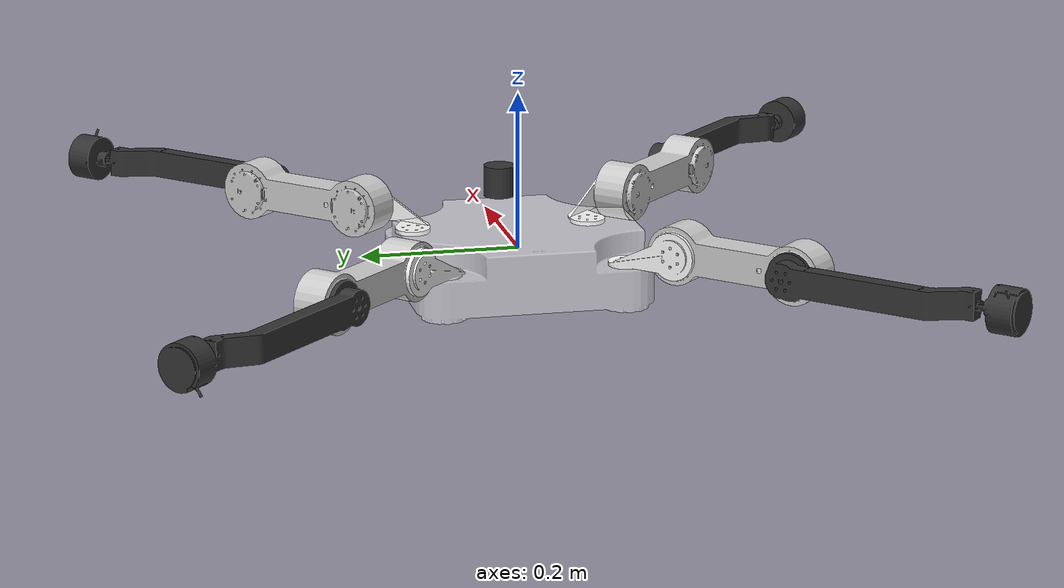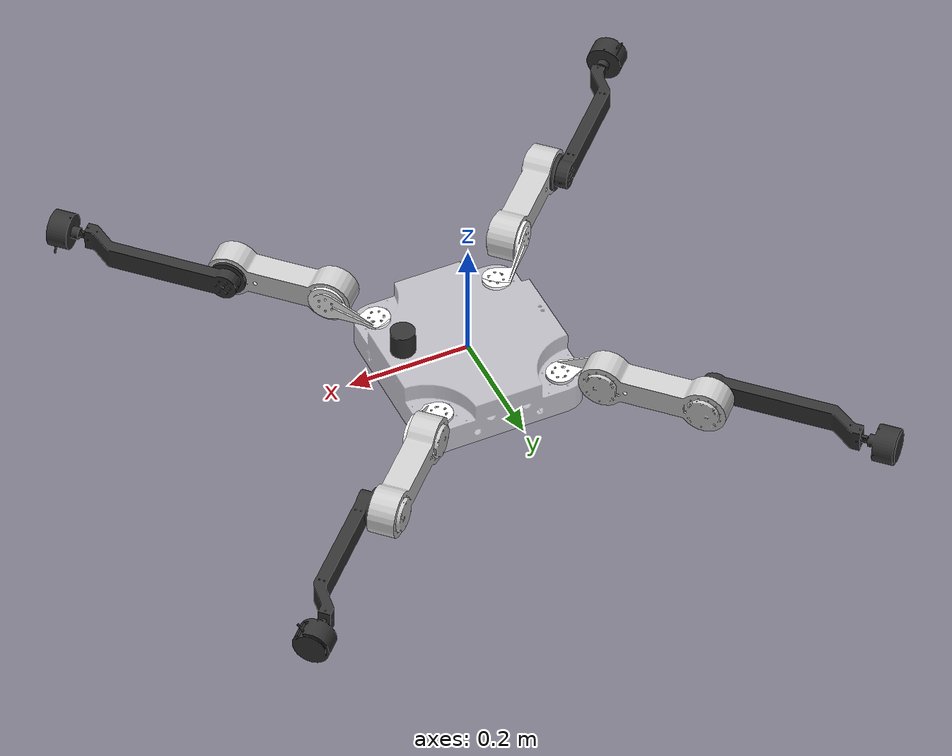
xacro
<robot name="sizu" xmlns:xacro="http://wiki.ros.org/xacro">
    <xacro:include filename="sizu.urdf.xacro" />
    <xacro:include filename="sizu_transmission.xacro" />
    <gazebo>
        <plugin name="gazebo_ros_control" filename="libgazebo_ros_control.so">
            <robotNamespace>/sizu</robotNamespace>
            <robotSimType>gazebo_ros_control/DefaultRobotHWSim</robotSimType>
        </plugin>
        <!-- Gazebo专用标签 -->
        <collision>
         <surface>
          <contact>
           <ode>
            <max_vel>0.1</max_vel>  <!-- 最大接触速度 -->
           </ode>
          </contact>
         </surface>
        </collision>
    </gazebo>

    <gazebo reference="lidar_link">
    <sensor type="ray" name="rplidar">
      <pose>0 0 0 0 0 0</pose>
      <visualize>true</visualize>
      <update_rate>30</update_rate>
      <ray>
        <scan>
          <horizontal>
            <samples>360</samples>
            <resolution>1</resolution>
            <min_angle>-2</min_angle>
            <max_angle>2</max_angle>
          </horizontal>
        </scan>
        <range>
          <min>0.1</min>
          <max>30.0</max>
          <resolution>0.01</resolution>
        </range>
        <noise>
          <type>gaussian</type>
          <mean>0.0</mean>
          <stddev>0.01</stddev>
        </noise>
      </ray>
      <plugin name="gazebo_rplidar" filename="libgazebo_ros_laser.so">
        <topicName>/sizu/scan</topicName>
        <frameName>lidar_link</frameName>
      </plugin>
    </sensor>
  </gazebo>

</robot>

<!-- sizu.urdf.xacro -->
<robot xmlns:xacro="http://ros.org/wiki/xacro" name="sizu">
  <!-- 过渡用 base（很小的可视box，不参与物理） -->
  <link name="map">
    <visual>
      <origin xyz="0.0 0.0 0.0" rpy="0.0 0.0 0.0" />
      <geometry>
        <box size="0.001 0.001 0.001"/>
      </geometry>
    </visual>
  </link>

  <joint name="map_joint" type="fixed">
    <parent link="map"/>
    <child link="base_link"/>
    <origin xyz="0.0 0.0 0.0" rpy="0.0 0.0 0.0"/>
  </joint>

  <!-- 机身 base_link -->
   <link name="base_link">
    <inertial>
      <origin xyz="0 0 0" rpy="0 0 0" />
      <mass value="5.0" />
      <inertia ixx="0.015" ixy="0.0" ixz="0.0" iyy="0.02" iyz="0.0" izz="0.03" />
    </inertial>
    <visual>
      <origin xyz="0 0 0" rpy="0 0 0" />
      <geometry>
        <mesh filename="package://sizu_gazebo/meshes/base_link.STL" />
      </geometry>
      <material name="">
        <color rgba="1 1 1 0.5" />
      </material>
    </visual>
    <collision>
      <origin xyz="0 0 0" rpy="0 0 0" />
      <geometry>
        <box size="0.1705 0.1555 0.05"/>
      </geometry>
    </collision>
  </link>

 <link name="lidar_link">
    <visual>
      <origin xyz="0.01 0 -0.02" rpy="0 0 0" />
      <geometry>
        <cylinder length="0.04" radius="0.02"/>
      </geometry>
      <material name="">
        <color rgba="0.2 0.2 0.2 1" />
      </material>
    </visual>
    <collision>
      <origin xyz="0.01 0 -0.02" rpy="0 0 0" />
      <geometry>
        <cylinder length="0.04" radius="0.02"/>
      </geometry>
    </collision>
  </link>

  <joint name="lidar_joint" type="fixed">
    <origin xyz="0.1 0 0.08" rpy="0 0 0" />
    <parent link="base_link" />
    <child link="lidar_link" />
    <axis xyz="0 0 0" />
  </joint>

  <link name="coxa_FL">
    <inertial>
      <origin xyz="0.04 0 0" rpy="0 0 0" />
      <mass value="0.15" />
      <inertia ixx="0.0001" ixy="0.0" ixz="0.0" iyy="0.0001" iyz="0.0" izz="0.0001" />
    </inertial>
    <visual>
      <origin xyz="0 0 0" rpy="0 0 0" />
      <geometry>
        <mesh filename="package://sizu_gazebo/meshes/coxa_FL.STL" />
      </geometry>
      <material name="">
        <color rgba="1 1 1 1" />
      </material>
    </visual>
    <collision>
      <origin xyz="0.0 0 -0.02" rpy="0 0 0" />
      <geometry>
        <cylinder length="0.02" radius="0.02"/>
      </geometry>
    </collision>
  </link>
  <joint
    name="coxa_joint_FL"
    type="continuous">
    <origin
      xyz="0.10275 0.11525 0"
      rpy="0 0 0" />
    <parent
      link="base_link" />
    <child
      link="coxa_FL" />
    <axis
      xyz="0 0 1" />
    <limit effort="50" velocity="2"/>
  </joint>
  <link name="femur_FL">
    <inertial>
      <origin xyz="0.08 0 0" rpy="0 0 0" />
      <mass value="1.5" />
      <inertia ixx="0.003" ixy="0.0" ixz="0.0" iyy="0.003" iyz="0.0" izz="0.003" />
    </inertial>
    <visual>
      <origin xyz="0 0 0" rpy="0 0 0" />
      <geometry>
        <mesh filename="package://sizu_gazebo/meshes/femur_FL.STL" />
      </geometry>
      <material name="">
        <color rgba="0.8 0.8 0.8 1" />
      </material>
    </visual>
    <collision>
      <origin xyz="0.06 0 -0.02" rpy="0 0 0" />
      <geometry>
        <box size="0.12 0.04 0.04"/>
      </geometry>
    </collision>
  </link>
  <joint
    name="femur_joint_FL"
    type="continuous">
    <origin
      xyz="0.0635321928743235 0.0437332030011003 0.0255"
      rpy="1.5707963267949 0 0.78539816339745" />
    <parent
      link="coxa_FL" />
    <child
      link="femur_FL" />
    <axis
      xyz="0 0 -1" />
    <limit effort="50" velocity="2"/>
  </joint>
  <link name="tibia_FL">
    <inertial>
      <origin xyz="0.18 0 0" rpy="0 0 0" />
      <mass value="1.2" />
      <inertia ixx="0.002" ixy="0.0" ixz="0.0" iyy="0.002" iyz="0.0" izz="0.002" />
    </inertial>
    <visual>
      <origin xyz="0 0 0" rpy="0 0 0" />
      <geometry>
        <mesh filename="package://sizu_gazebo/meshes/tibia_FL.STL" />
      </geometry>
      <material name="">
        <color rgba="0.2 0.2 0.2 1" />
      </material>
    </visual>
    <collision>
      <origin xyz="0.29 0 -0.01" rpy="0 0 0" />
      <geometry>
        <sphere radius="0.02" />
      </geometry>
    </collision>
  </link>
  <joint
    name="tibia_joint_FL"
    type="continuous">
    <origin
      xyz="0.164 0 0"
      rpy="0 0 0" />
    <parent
      link="femur_FL" />
    <child
      link="tibia_FL" />
    <axis
      xyz="0 0 -1" />
    <limit effort="50" velocity="2"/>
  </joint>
  <link name="coxa_RL">
    <inertial>
      <origin xyz="0.04 0 0" rpy="0 0 0" />
      <mass value="0.15" />
      <inertia ixx="0.0001" ixy="0.0" ixz="0.0" iyy="0.0001" iyz="0.0" izz="0.0001" />
    </inertial>
    <visual>
      <origin xyz="0 0 0" rpy="0 0 0" />
      <geometry>
        <mesh filename="package://sizu_gazebo/meshes/coxa_RL.STL" />
      </geometry>
      <material name="">
        <color rgba="1 1 1 1" />
      </material>
    </visual>
    <collision>
      <origin xyz="0.0 0 -0.02" rpy="0 0 0" />
      <geometry>
        <cylinder length="0.02" radius="0.02"/>
      </geometry>
    </collision>
  </link>
  <joint
    name="coxa_joint_RL"
    type="continuous">
    <origin
      xyz="-0.10275 0.11525 0"
      rpy="0 0 0" />
    <parent
      link="base_link" />
    <child
      link="coxa_RL" />
    <axis
      xyz="0 0 1" />
    <limit effort="50" velocity="2"/>
  </joint>
  <link name="femur_RL">
    <inertial>
      <origin xyz="0.08 0 0" rpy="0 0 0" />
      <mass value="1.5" />
      <inertia ixx="0.003" ixy="0.0" ixz="0.0" iyy="0.003" iyz="0.0" izz="0.003" />
    </inertial>
    <visual>
      <origin xyz="0 0 0" rpy="0 0 0" />
      <geometry>
        <mesh filename="package://sizu_gazebo/meshes/femur_RL.STL" />
      </geometry>
      <material name="">
        <color rgba="0.8 0.8 0.8 1" />
      </material>
    </visual>
    <collision>
      <origin xyz="0.06 0 -0.02" rpy="0 0 0" />
      <geometry>
        <box size="0.12 0.04 0.04"/>
      </geometry>
    </collision>
  </link>
  <joint
    name="femur_joint_RL"
    type="continuous">
    <origin
      xyz="-0.0635321928743236 0.0437332030011001 0.0255"
      rpy="-1.5707963267949 0 2.35619449019235" />
    <parent
      link="coxa_RL" />
    <child
      link="femur_RL" />
    <axis
      xyz="0 0 -1" />
    <limit effort="50" velocity="2"/>
  </joint>
  <link name="tibia_RL">
    <inertial>
      <origin xyz="0.18 0 0" rpy="0 0 0" />
      <mass value="1.2" />
      <inertia ixx="0.002" ixy="0.0" ixz="0.0" iyy="0.002" iyz="0.0" izz="0.002" />
    </inertial>
    <visual>
      <origin xyz="0 0 0" rpy="0 0 0" />
      <geometry>
        <mesh filename="package://sizu_gazebo/meshes/tibia_RL.STL" />
      </geometry>
      <material name="">
        <color rgba="0.2 0.2 0.2 1" />
      </material>
    </visual>
    <collision>
      <origin xyz="0.29 0 -0.01" rpy="0 0 0" />
      <geometry>
        <sphere radius="0.02" />
      </geometry>
    </collision>
  </link>
  <joint
    name="tibia_joint_RL"
    type="continuous">
    <origin
      xyz="0.164 0 0"
      rpy="0 0 0" />
    <parent
      link="femur_RL" />
    <child
      link="tibia_RL" />
    <axis
      xyz="0 0 -1" />
    <limit effort="50" velocity="2"/>
  </joint>
  <link name="coxa_FR">
    <inertial>
      <origin xyz="0.04 0 0" rpy="0 0 0" />
      <mass value="0.15" />
      <inertia ixx="0.0001" ixy="0.0" ixz="0.0" iyy="0.0001" iyz="0.0" izz="0.0001" />
    </inertial>
    <visual>
      <origin xyz="0 0 0" rpy="0 0 0" />
      <geometry>
        <mesh filename="package://sizu_gazebo/meshes/coxa_FR.STL" />
      </geometry>
      <material name="">
        <color rgba="1 1 1 1" />
      </material>
    </visual>
    <collision>
      <origin xyz="0.0 0 -0.02" rpy="0 0 0" />
      <geometry>
        <cylinder length="0.02" radius="0.02"/>
      </geometry>
    </collision>
  </link>
  <joint
    name="coxa_joint_FR"
    type="continuous">
    <origin
      xyz="0.10275 -0.11525 0"
      rpy="0 0 0" />
    <parent
      link="base_link" />
    <child
      link="coxa_FR" />
    <axis
      xyz="0 0 1" />
    <limit effort="50" velocity="2"/>
  </joint>
  <link name="femur_FR">
    <inertial>
      <origin xyz="0.08 0 0" rpy="0 0 0" />
      <mass value="1.5" />
      <inertia ixx="0.003" ixy="0.0" ixz="0.0" iyy="0.003" iyz="0.0" izz="0.003" />
    </inertial>
    <visual>
      <origin xyz="0 0 0" rpy="0 0 0" />
      <geometry>
        <mesh filename="package://sizu_gazebo/meshes/femur_FR.STL" />
      </geometry>
      <material name="">
        <color rgba="0.8 0.8 0.8 1" />
      </material>
    </visual>
    <collision>
      <origin xyz="0.06 0 -0.02" rpy="0 0 0" />
      <geometry>
        <box size="0.12 0.04 0.04"/>
      </geometry>
    </collision>
  </link>
  <joint
    name="femur_joint_FR"
    type="continuous">
    <origin
      xyz="0.0635321928743236 -0.0437332030011001 0.0255000000000001"
      rpy="-1.5707963267949 0 -0.785398163397447" />
    <parent
      link="coxa_FR" />
    <child
      link="femur_FR" />
    <axis
      xyz="0 0 -1" />
    <limit effort="50" velocity="2"/>
  </joint>
  <link name="tibia_FR">
    <inertial>
      <origin xyz="0.18 0 0" rpy="0 0 0" />
      <mass value="1.2" />
      <inertia ixx="0.002" ixy="0.0" ixz="0.0" iyy="0.002" iyz="0.0" izz="0.002" />
    </inertial>
    <visual>
      <origin xyz="0 0 0" rpy="0 0 0" />
      <geometry>
        <mesh filename="package://sizu_gazebo/meshes/tibia_FR.STL" />
      </geometry>
      <material name="">
        <color rgba="0.2 0.2 0.2 1" />
      </material>
    </visual>
    <collision>
      <origin xyz="0.29 0 -0.01" rpy="0 0 0" />
      <geometry>
        <sphere radius="0.02" />
      </geometry>
    </collision>
  </link>
  <joint
    name="tibia_joint_FR"
    type="continuous">
    <origin
      xyz="0.164 0 0"
      rpy="0 0 0" />
    <parent
      link="femur_FR" />
    <child
      link="tibia_FR" />
    <axis
      xyz="0 0 -1" />
    <limit effort="50" velocity="2"/>
  </joint>
  <link name="coxa_RR">
    <inertial>
      <origin xyz="0.04 0 0" rpy="0 0 0" />
      <mass value="0.15" />
      <inertia ixx="0.0001" ixy="0.0" ixz="0.0" iyy="0.0001" iyz="0.0" izz="0.0001" />
    </inertial>
    <visual>
      <origin xyz="0 0 0" rpy="0 0 0" />
      <geometry>
        <mesh filename="package://sizu_gazebo/meshes/coxa_RR.STL" />
      </geometry>
      <material name="">
        <color rgba="1 1 1 1" />
      </material>
    </visual>
    <collision>
      <origin xyz="0.0 0 -0.02" rpy="0 0 0" />
      <geometry>
        <cylinder length="0.02" radius="0.02"/>
      </geometry>
    </collision>
  </link>
  <joint
    name="coxa_joint_RR"
    type="continuous">
    <origin
      xyz="-0.10275 -0.11525 0"
      rpy="0 0 0" />
    <parent
      link="base_link" />
    <child
      link="coxa_RR" />
    <axis
      xyz="0 0 1" />
    <limit effort="50" velocity="2"/>
  </joint>
  <link name="femur_RR">
    <inertial>
      <origin xyz="0.08 0 0" rpy="0 0 0" />
      <mass value="1.5" />
      <inertia ixx="0.003" ixy="0.0" ixz="0.0" iyy="0.003" iyz="0.0" izz="0.003" />
    </inertial>
    <visual>
      <origin xyz="0 0 0" rpy="0 0 0" />
      <geometry>
        <mesh filename="package://sizu_gazebo/meshes/femur_RR.STL" />
      </geometry>
      <material name="">
        <color rgba="0.8 0.8 0.8 1" />
      </material>
    </visual>
    <collision>
      <origin xyz="0.06 0 -0.02" rpy="0 0 0" />
      <geometry>
        <box size="0.12 0.04 0.04"/>
      </geometry>
    </collision>
  </link>
  <joint
    name="femur_joint_RR"
    type="continuous">
    <origin
      xyz="-0.0635321928743236 -0.0437332030011001 0.0255"
      rpy="1.5707963267949 0 -2.35619449019235" />
    <parent
      link="coxa_RR" />
    <child
      link="femur_RR" />
    <axis
      xyz="0 0 -1" />
    <limit effort="50" velocity="2"/>
  </joint>
  <link name="tibia_RR">
    <inertial>
      <origin xyz="0.18 0 0" rpy="0 0 0" />
      <mass value="1.2" />
      <inertia ixx="0.002" ixy="0.0" ixz="0.0" iyy="0.002" iyz="0.0" izz="0.002" />
    </inertial>
    <visual>
      <origin xyz="0 0 0" rpy="0 0 0" />
      <geometry>
        <mesh filename="package://sizu_gazebo/meshes/tibia_RR.STL" />
      </geometry>
      <material name="">
        <color rgba="0.2 0.2 0.2 1" />
      </material>
    </visual>
    <collision>
      <origin xyz="0.29 0 -0.01" rpy="0 0 0" />
      <geometry>
        <sphere radius="0.02" />
      </geometry>
    </collision>
  </link>
  <joint
    name="tibia_joint_RR"
    type="continuous">
    <origin
      xyz="0.164 0 0"
      rpy="0 0 0" />
    <parent
      link="femur_RR" />
    <child
      link="tibia_RR" />
    <axis
      xyz="0 0 -1" />
    <limit effort="50" velocity="2"/>
  </joint>

  <gazebo reference="tibia_FL">
    <mu1>100000.0</mu1>
    <mu2>100000.0</mu2>
    <maxVel>0.0</maxVel>
    <minDepth>0.001</minDepth>
  </gazebo>

  <gazebo reference="tibia_FR">
    <mu1>100000.0</mu1>
    <mu2>100000.0</mu2>
    <maxVel>0.0</maxVel>
    <minDepth>0.001</minDepth>
  </gazebo>

  <gazebo reference="tibia_RL">
    <mu1>100000.0</mu1>
    <mu2>100000.0</mu2>
    <maxVel>0.0</maxVel>
    <minDepth>0.001</minDepth>
  </gazebo>

  <gazebo reference="tibia_RR">
    <mu1>100000.0</mu1>
    <mu2>100000.0</mu2>
    <maxVel>0.0</maxVel>
    <minDepth>0.001</minDepth>
  </gazebo>

</robot>
